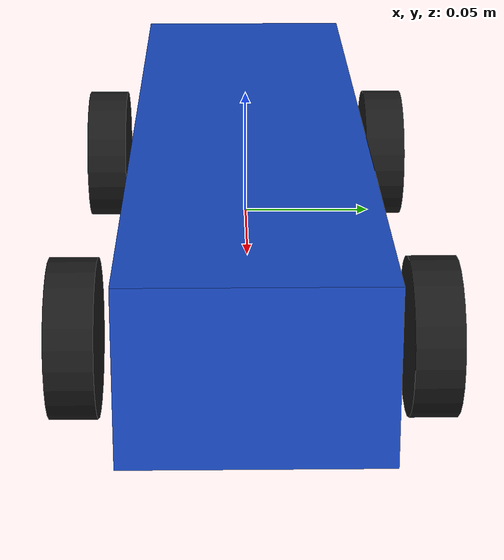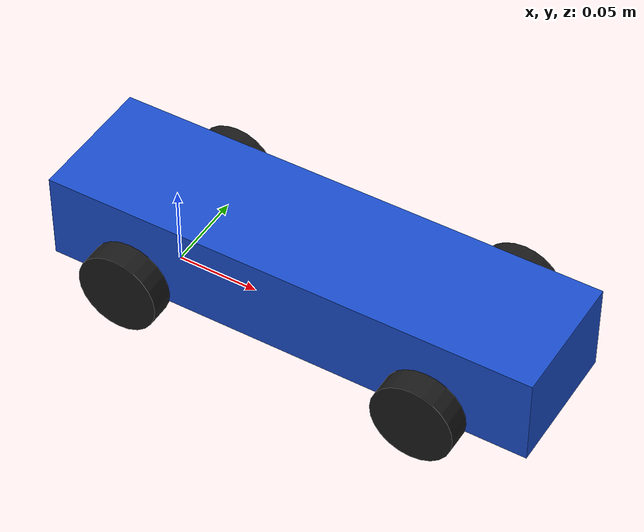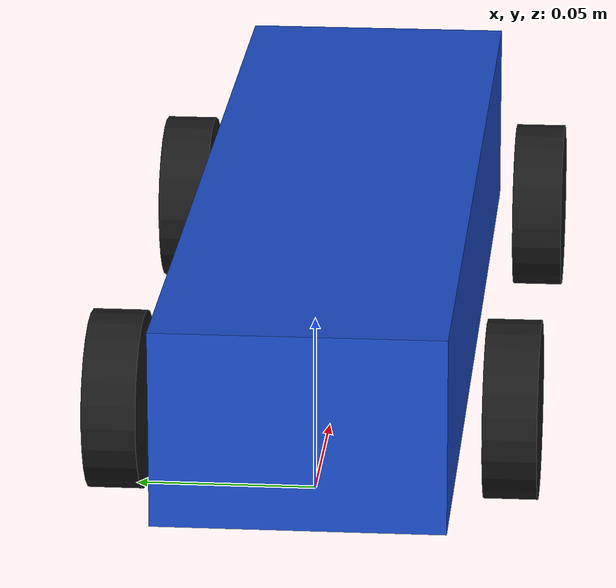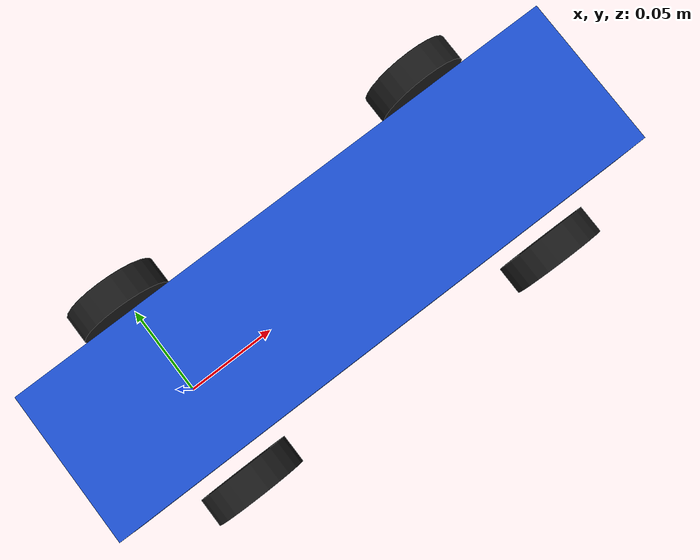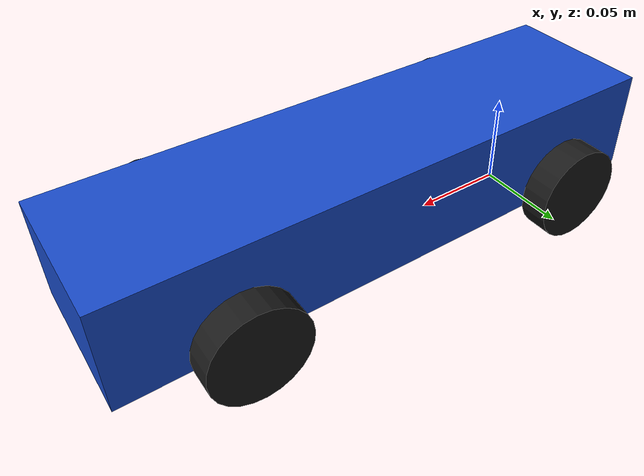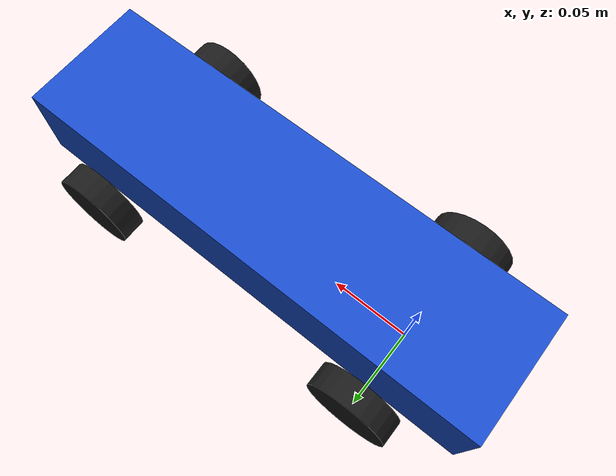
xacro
<?xml version="1.0"?>
<robot xmlns:xacro="http://www.ros.org/wiki/xacro" name="rc_car">

  <!-- ===================== MEASURED (from you) ===================== -->
  <xacro:property name="wheel_radius"   value="0.025"/>  <!-- 5 cm diameter -->
  <xacro:property name="wheel_width"    value="0.015"/>
  <xacro:property name="wheel_base"     value="0.185"/>  <!-- rear axle -> front axle -->
  <xacro:property name="track_width"    value="0.11"/>   <!-- left wheel centre -> right wheel centre -->
  <xacro:property name="chassis_length" value="0.30"/>
  <xacro:property name="chassis_height" value="0.055"/>

  <!-- ===================== ASSUMED (measure later) ================= -->
  <xacro:property name="chassis_width"     value="0.08"/>   <!-- not given: must be < track_width - wheel_width -->
  <xacro:property name="chassis_x_offset"  value="0.0925"/> <!-- chassis centre, in front of rear axle (here: centred between axles) -->
  <xacro:property name="ground_clearance"  value="0.010"/>  <!-- chassis bottom above ground -->
  <xacro:property name="chassis_mass"      value="1.0"/>    <!-- kg -->
  <xacro:property name="wheel_mass"        value="0.05"/>   <!-- kg -->
  <xacro:property name="steer_limit"       value="0.5"/>    <!-- rad, to calibrate with the servo -->

  <!-- ===================== Inertia macros ========================== -->
  <xacro:macro name="box_inertia" params="m x y z">
    <inertia ixx="${m*(y*y+z*z)/12.0}" ixy="0" ixz="0"
             iyy="${m*(x*x+z*z)/12.0}" iyz="0"
             izz="${m*(x*x+y*y)/12.0}"/>
  </xacro:macro>

  <xacro:macro name="wheel_inertia" params="m r w">
    <!-- cylinder, spin axis = link Y (after the roll below) -->
    <inertia ixx="${m*(3*r*r+w*w)/12.0}" ixy="0" ixz="0"
             iyy="${m*r*r/2.0}" iyz="0"
             izz="${m*(3*r*r+w*w)/12.0}"/>
  </xacro:macro>

  <!-- ===================== Wheel macro ============================= -->
  <!-- Wheel link frame: Y = spin axis. Cylinder is rolled 90 deg to match. -->
  <xacro:macro name="wheel" params="name">
    <link name="${name}">
      <visual>
        <origin xyz="0 0 0" rpy="${pi/2} 0 0"/>
        <geometry><cylinder radius="${wheel_radius}" length="${wheel_width}"/></geometry>
        <material name="black"><color rgba="0.1 0.1 0.1 1"/></material>
      </visual>
      <collision>
        <origin xyz="0 0 0" rpy="${pi/2} 0 0"/>
        <geometry><cylinder radius="${wheel_radius}" length="${wheel_width}"/></geometry>
      </collision>
      <inertial>
        <mass value="${wheel_mass}"/>
        <xacro:wheel_inertia m="${wheel_mass}" r="${wheel_radius}" w="${wheel_width}"/>
      </inertial>
    </link>
  </xacro:macro>

  <!-- Small link that carries the steering rotation of a front wheel -->
  <xacro:macro name="steer_link" params="name">
    <link name="${name}">
      <inertial>
        <mass value="0.01"/>
        <inertia ixx="1e-6" ixy="0" ixz="0" iyy="1e-6" iyz="0" izz="1e-6"/>
      </inertial>
    </link>
  </xacro:macro>

  <!-- ===================== Links & joints ========================== -->
  <!-- base_footprint: on the ground, under the REAR AXLE centre (x forward, y left, z up) -->
  <link name="base_footprint"/>

  <!-- base_link: rear axle centre, at wheel-axle height -->
  <link name="base_link"/>
  <joint name="base_footprint_joint" type="fixed">
    <parent link="base_footprint"/>
    <child link="base_link"/>
    <origin xyz="0 0 ${wheel_radius}" rpy="0 0 0"/>
  </joint>

  <!-- Chassis -->
  <link name="chassis">
    <visual>
      <geometry><box size="${chassis_length} ${chassis_width} ${chassis_height}"/></geometry>
      <material name="blue"><color rgba="0.1 0.3 0.8 1"/></material>
    </visual>
    <collision>
      <geometry><box size="${chassis_length} ${chassis_width} ${chassis_height}"/></geometry>
    </collision>
    <inertial>
      <mass value="${chassis_mass}"/>
      <xacro:box_inertia m="${chassis_mass}" x="${chassis_length}" y="${chassis_width}" z="${chassis_height}"/>
    </inertial>
  </link>
  <joint name="chassis_joint" type="fixed">
    <parent link="base_link"/>
    <child link="chassis"/>
    <!-- z: chassis bottom sits ground_clearance above ground; base_link is wheel_radius above ground -->
    <origin xyz="${chassis_x_offset} 0 ${ground_clearance + chassis_height/2 - wheel_radius}" rpy="0 0 0"/>
  </joint>

  <!-- Rear wheels (driven, no steering) -->
  <xacro:wheel name="rear_left_wheel"/>
  <joint name="rear_left_wheel_joint" type="continuous">
    <parent link="base_link"/>
    <child link="rear_left_wheel"/>
    <origin xyz="0 ${track_width/2} 0" rpy="0 0 0"/>
    <axis xyz="0 1 0"/>
  </joint>

  <xacro:wheel name="rear_right_wheel"/>
  <joint name="rear_right_wheel_joint" type="continuous">
    <parent link="base_link"/>
    <child link="rear_right_wheel"/>
    <origin xyz="0 ${-track_width/2} 0" rpy="0 0 0"/>
    <axis xyz="0 1 0"/>
  </joint>

  <!-- Front steering knuckles (rotate around Z) -->
  <xacro:steer_link name="front_left_steer"/>
  <joint name="front_left_steer_joint" type="revolute">
    <parent link="base_link"/>
    <child link="front_left_steer"/>
    <origin xyz="${wheel_base} ${track_width/2} 0" rpy="0 0 0"/>
    <axis xyz="0 0 1"/>
    <limit lower="${-steer_limit}" upper="${steer_limit}" effort="1.0" velocity="3.0"/>
  </joint>

  <xacro:steer_link name="front_right_steer"/>
  <joint name="front_right_steer_joint" type="revolute">
    <parent link="base_link"/>
    <child link="front_right_steer"/>
    <origin xyz="${wheel_base} ${-track_width/2} 0" rpy="0 0 0"/>
    <axis xyz="0 0 1"/>
    <limit lower="${-steer_limit}" upper="${steer_limit}" effort="1.0" velocity="3.0"/>
  </joint>

  <!-- Front wheels (free spin, steered) -->
  <xacro:wheel name="front_left_wheel"/>
  <joint name="front_left_wheel_joint" type="continuous">
    <parent link="front_left_steer"/>
    <child link="front_left_wheel"/>
    <origin xyz="0 0 0" rpy="0 0 0"/>
    <axis xyz="0 1 0"/>
  </joint>

  <xacro:wheel name="front_right_wheel"/>
  <joint name="front_right_wheel_joint" type="continuous">
    <parent link="front_right_steer"/>
    <child link="front_right_wheel"/>
    <origin xyz="0 0 0" rpy="0 0 0"/>
    <axis xyz="0 1 0"/>
  </joint>

  <!-- ===================== Sensor frames (TODO: real positions) ==== -->
  <xacro:property name="imu_dx" value="0.035"/>
  <link name="imu_link"/>
  <joint name="imu_joint" type="fixed">
    <parent link="base_link"/>
    <child link="imu_link"/>
    <origin xyz="${wheel_base + imu_dx} 0 ${ground_clearance + chassis_height - wheel_radius}" rpy="0 0 ${-pi/2}"/>
  </joint>

  <!-- GPS: position barely matters at this accuracy, so it sits on top of the chassis centre -->
  <link name="gps_link"/>
  <joint name="gps_joint" type="fixed">
    <parent link="chassis"/>
    <child link="gps_link"/>
    <origin xyz="0 0 ${chassis_height/2}" rpy="0 0 0"/>
  </joint>

  <!-- RPLIDAR A1M8 at the chassis centreline and top surface. -->
  <link name="lidar_link"/>
  <joint name="lidar_joint" type="fixed">
    <parent link="base_link"/>
    <child link="lidar_link"/>
    <origin xyz="${chassis_x_offset} 0 ${ground_clearance + chassis_height - wheel_radius}" rpy="0 0 0"/>
  </joint>

</robot>
